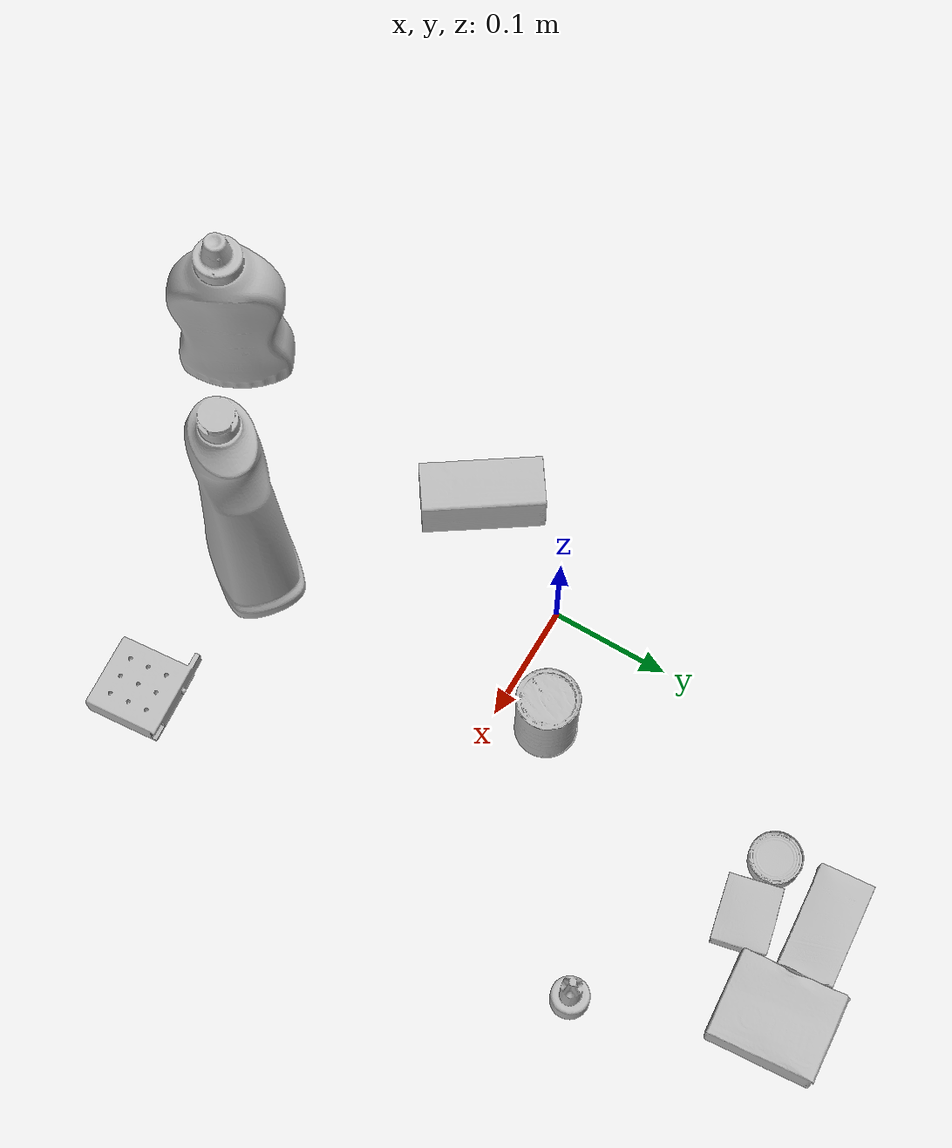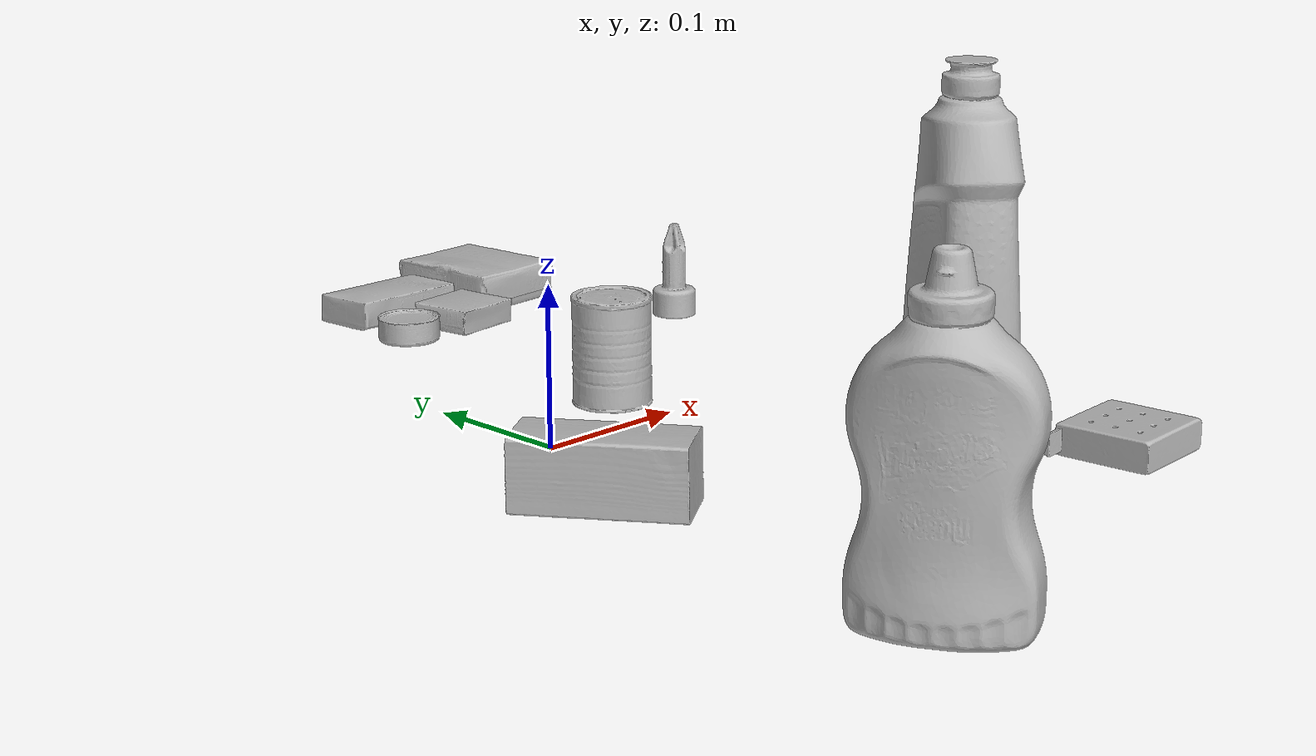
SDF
<sdf version="1.4">
  <world name="default">
    <light name="light1" type="point">
      <pose>0 0 1 0 0 0</pose>
      <diffuse>3 3 3 1</diffuse>
      <specular>3 3 3 1</specular>
    </light>
    <light name="light2" type="point">
      <pose>0 0.5 2 0 0 0</pose>
      <diffuse>1 1 1 1</diffuse>
      <specular>1 1 1 1</specular>
    </light>
    <light name="light3" type="point">
      <pose>0 0.5 2 0 0 0</pose>
      <diffuse>3 3 3 1</diffuse>
      <specular>3 3 3 1</specular>
    </light>
    <scene>
      <ambient>0.7 0.7 0.7</ambient>
    </scene>
    <model name="bottle1">
      <link name="link_bottle1">
        <collision name="default">
          <geometry>
            <mesh>
              <uri>model://mustard_bottle/collision_meshes/collision.obj</uri>
              <scale>1.0 1.0 1.0</scale>
            </mesh>
          </geometry>
          <surface>
            <friction>
              <ode>
                <mu>0.5</mu>
                <mu2>0.5</mu2>
              </ode>
            </friction>
          <contact>
        <ode>
            <max_vel>0</max_vel>
            <min_depth>0.0001</min_depth>
            <kp>1e8</kp>
        </ode>
    </contact></surface>
        </collision>
        <visual name="default">
          <geometry>
            <mesh>
              <uri>model://mustard_bottle/visual_meshes/visual.dae</uri>
              <scale>1.0 1.0 1.0</scale>
            </mesh>
          </geometry>
        </visual>
        <inertial>
          <mass>0.9814921021461487</mass>
          <pose>0.000503245391882956 -0.00015647400869056582 -0.0174757968634367 0.00041823298570721707 0.000946579165099878 0.024853733541460008</pose>
          <inertia>
            <ixx>0.0027254699</ixx>
            <iyy>0.0023913688</iyy>
            <izz>0.0007182988</izz>
            <ixy>0</ixy>
            <ixz>0</ixz>
            <iyz>0</iyz>
          </inertia>
        </inertial>
      </link>
      <pose>-0.06332647800445557 -0.3509881794452667 0.09615199267864227 1.5462778718309598e-05 1.6913002993196727e-05 -2.6707772739385565</pose>
    </model>
    <model name="bottle2">
      <link name="link_bottle2">
        <collision name="default">
          <geometry>
            <mesh>
              <uri>model://bleach_cleanser/collision_meshes/collision.obj</uri>
              <scale>1.0 1.0 1.0</scale>
            </mesh>
          </geometry>
          <surface>
            <friction>
              <ode>
                <mu>0.5</mu>
                <mu2>0.5</mu2>
              </ode>
            </friction>
          <contact>
        <ode>
            <max_vel>0</max_vel>
            <min_depth>0.0001</min_depth>
            <kp>1e8</kp>
        </ode>
    </contact></surface>
        </collision>
        <visual name="default">
          <geometry>
            <mesh>
              <uri>model://bleach_cleanser/visual_meshes/visual.dae</uri>
              <scale>1.0 1.0 1.0</scale>
            </mesh>
          </geometry>
        </visual>
        <inertial>
          <mass>0.5613878965377808</mass>
          <pose>0.00012193182919872925 0.0037838828284293413 -0.02442161738872528 -0.07381670616369514 0.00042011545192634117 -0.006875071107578698</pose>
          <inertia>
            <ixx>0.0027323565</ixx>
            <iyy>0.002546156</iyy>
            <izz>0.0004671619</izz>
            <ixy>0</ixy>
            <ixz>0</ixz>
            <iyz>0</iyz>
          </inertia>
        </inertial>
      </link>
      <pose>0.08750555664300919 -0.23795662820339203 0.12578417360782623 -0.00020466785381448234 1.1496330504502928e-05 2.4917598590366334</pose>
    </model>
    <model name="toy1">
      <link name="link_toy1">
        <collision name="default">
          <geometry>
            <mesh>
              <uri>model://nine_hole_peg_test/collision_meshes/collision.obj</uri>
              <scale>0.5 0.5 0.5</scale>
            </mesh>
          </geometry>
          <surface>
            <friction>
              <ode>
                <mu>0.5</mu>
                <mu2>0.5</mu2>
              </ode>
            </friction>
          <contact>
        <ode>
            <max_vel>0</max_vel>
            <min_depth>0.0001</min_depth>
            <kp>1e8</kp>
        </ode>
    </contact></surface>
        </collision>
        <visual name="default">
          <geometry>
            <mesh>
              <uri>model://nine_hole_peg_test/visual_meshes/visual.dae</uri>
              <scale>0.5 0.5 0.5</scale>
            </mesh>
          </geometry>
        </visual>
        <inertial>
          <mass>0.10001979023218155</mass>
          <pose>-0.002308693015947938 -0.0048238071613013744 1.323034393863054e-05 -0.001466679064329537 0.000719417562538249 -0.6342417933325166</pose>
          <inertia>
            <ixx>3.9099352e-05</ixx>
            <iyy>3.650665e-05</iyy>
            <izz>6.851359e-05</izz>
            <ixy>0</ixy>
            <ixz>0</ixz>
            <iyz>0</iyz>
          </inertia>
        </inertial>
      </link>
      <pose>0.22482654452323914 -0.2516252100467682 0.010385501198470592 -1.3153306728906787e-09 -1.7533610539138154e-09 1.661186961516463</pose>
    </model>
    <model name="toy2">
      <link name="link_toy2">
        <collision name="default">
          <geometry>
            <mesh>
              <uri>model://d_toy_airplane/collision_meshes/collision.obj</uri>
              <scale>1.0 1.0 1.0</scale>
            </mesh>
          </geometry>
          <surface>
            <friction>
              <ode>
                <mu>0.5</mu>
                <mu2>0.5</mu2>
              </ode>
            </friction>
          <contact>
        <ode>
            <max_vel>0</max_vel>
            <min_depth>0.0001</min_depth>
            <kp>1e8</kp>
        </ode>
    </contact></surface>
        </collision>
        <visual name="default">
          <geometry>
            <mesh>
              <uri>model://d_toy_airplane/visual_meshes/visual.dae</uri>
              <scale>1.0 1.0 1.0</scale>
            </mesh>
          </geometry>
        </visual>
        <inertial>
          <mass>0.019254321232438087</mass>
          <pose>9.410314669366926e-05 -5.809308640891686e-05 -0.011728096753358841 0.0002669110283705203 0.00467899073598619 0.5194519611142697</pose>
          <inertia>
            <ixx>5.7720713e-06</ixx>
            <iyy>5.776424e-06</iyy>
            <izz>1.7426261e-06</izz>
            <ixy>0</ixy>
            <ixz>0</ixz>
            <iyz>0</iyz>
          </inertia>
        </inertial>
      </link>
      <pose>0.2699548006057739 0.16620829701423645 0.033338889479637146 4.660718563972221e-05 -7.690075601233921e-05 0.4319920384248468</pose>
    </model>
    <model name="can1">
      <link name="link_can1">
        <collision name="default">
          <geometry>
            <mesh>
              <uri>model://master_chef_can/collision_meshes/collision.obj</uri>
              <scale>0.5 0.5 0.5</scale>
            </mesh>
          </geometry>
          <surface>
            <friction>
              <ode>
                <mu>0.5</mu>
                <mu2>0.5</mu2>
              </ode>
            </friction>
          <contact>
        <ode>
            <max_vel>0</max_vel>
            <min_depth>0.0001</min_depth>
            <kp>1e8</kp>
        </ode>
    </contact></surface>
        </collision>
        <visual name="default">
          <geometry>
            <mesh>
              <uri>model://master_chef_can/visual_meshes/visual.dae</uri>
              <scale>0.5 0.5 0.5</scale>
            </mesh>
          </geometry>
        </visual>
        <inertial>
          <mass>0.11909646540880203</mass>
          <pose>-4.661963976104744e-05 1.3926845099376806e-07 -5.07990553160198e-05 -0.0017995128948922 0.0006479239957886283 -0.6102624789319168</pose>
          <inertia>
            <ixx>6.990155e-05</ixx>
            <iyy>6.938709e-05</iyy>
            <izz>3.8625953e-05</izz>
            <ixy>0</ixy>
            <ixz>0</ixz>
            <iyz>0</iyz>
          </inertia>
        </inertial>
      </link>
      <pose>0.0896235778927803 0.04104979336261749 0.03530200198292732 -1.1788329561505992e-06 -9.449913910905881e-07 -1.5200417273816456</pose>
    </model>
    <model name="can2">
      <link name="link_can2">
        <collision name="default">
          <geometry>
            <mesh>
              <uri>model://tuna_fish_can/collision_meshes/collision.obj</uri>
              <scale>0.5 0.5 0.5</scale>
            </mesh>
          </geometry>
          <surface>
            <friction>
              <ode>
                <mu>0.5</mu>
                <mu2>0.5</mu2>
              </ode>
            </friction>
          <contact>
        <ode>
            <max_vel>0</max_vel>
            <min_depth>0.0001</min_depth>
            <kp>1e8</kp>
        </ode>
    </contact></surface>
        </collision>
        <visual name="default">
          <geometry>
            <mesh>
              <uri>model://tuna_fish_can/visual_meshes/visual.dae</uri>
              <scale>0.5 0.5 0.5</scale>
            </mesh>
          </geometry>
        </visual>
        <inertial>
          <mass>0.019333453848958015</mass>
          <pose>-2.0361452698125504e-05 -7.256490789586678e-06 -0.0005269024986773729 -0.0017944786606280685 0.0001716327651594619 0.24054823336333434</pose>
          <inertia>
            <ixx>2.6139116e-06</ixx>
            <iyy>2.6030175e-06</iyy>
            <izz>4.4727767e-06</izz>
            <ixy>0</ixy>
            <ixz>0</ixz>
            <iyz>0</iyz>
          </inertia>
        </inertial>
      </link>
      <pose>0.09481833875179291 0.25013771653175354 0.008519998751580715 4.5609847312018293e-10 1.1799104633162937e-08 1.83088733914567</pose>
    </model>
    <model name="box1">
      <link name="link_box1">
        <collision name="default">
          <geometry>
            <mesh>
              <uri>model://sugar_box/collision_meshes/collision.obj</uri>
              <scale>0.5 0.5 0.5</scale>
            </mesh>
          </geometry>
          <surface>
            <friction>
              <ode>
                <mu>0.5</mu>
                <mu2>0.5</mu2>
              </ode>
            </friction>
          <contact>
        <ode>
            <max_vel>0</max_vel>
            <min_depth>0.0001</min_depth>
            <kp>1e8</kp>
        </ode>
    </contact></surface>
        </collision>
        <visual name="default">
          <geometry>
            <mesh>
              <uri>model://sugar_box/visual_meshes/visual.dae</uri>
              <scale>0.5 0.5 0.5</scale>
            </mesh>
          </geometry>
        </visual>
        <inertial>
          <mass>0.11277332901954651</mass>
          <pose>0.0005171863595023751 1.924554817378521e-05 -0.0001818240125430748 -0.00040462603870476286 0.0010506635217257978 0.002615378323397263</pose>
          <inertia>
            <ixx>2.34906e-05</ixx>
            <iyy>7.592646e-05</iyy>
            <izz>9.089305e-05</izz>
            <ixy>0</ixy>
            <ixz>0</ixz>
            <iyz>0</iyz>
          </inertia>
        </inertial>
      </link>
      <pose>0.1233922615647316 0.3081555664539337 0.011399304494261742 0.0007742176903913197 -0.02343339294349664 -3.0602881431543305</pose>
    </model>
    <model name="box2">
      <link name="link_box2">
        <collision name="default">
          <geometry>
            <mesh>
              <uri>model://gelatin_box/collision_meshes/collision.obj</uri>
              <scale>1.0 1.0 1.0</scale>
            </mesh>
          </geometry>
          <surface>
            <friction>
              <ode>
                <mu>0.5</mu>
                <mu2>0.5</mu2>
              </ode>
            </friction>
          <contact>
        <ode>
            <max_vel>0</max_vel>
            <min_depth>0.0001</min_depth>
            <kp>1e8</kp>
        </ode>
    </contact></surface>
        </collision>
        <visual name="default">
          <geometry>
            <mesh>
              <uri>model://gelatin_box/visual_meshes/visual.dae</uri>
              <scale>1.0 1.0 1.0</scale>
            </mesh>
          </geometry>
        </visual>
        <inertial>
          <mass>0.18825438618659973</mass>
          <pose>0.0004319618456065655 0.00011156871914863586 -0.0003640321083366871 -0.0010503720853528096 -0.004755817758068365 0.016440559471334753</pose>
          <inertia>
            <ixx>0.00013289225</ixx>
            <iyy>9.492423e-05</iyy>
            <izz>0.0002022916</izz>
            <ixy>0</ixy>
            <ixz>0</ixz>
            <iyz>0</iyz>
          </inertia>
        </inertial>
      </link>
      <pose>0.20476095378398895 0.308126837015152 0.01516831573098898 0.005597032592603572 -0.0073040306530798346 -3.0663459355223206</pose>
    </model>
    <model name="box3">
      <link name="link_box3">
        <collision name="default">
          <geometry>
            <mesh>
              <uri>model://wood_block/collision_meshes/collision.obj</uri>
              <scale>0.5 0.5 0.5</scale>
            </mesh>
          </geometry>
          <surface>
            <friction>
              <ode>
                <mu>0.5</mu>
                <mu2>0.5</mu2>
              </ode>
            </friction>
          <contact>
        <ode>
            <max_vel>0</max_vel>
            <min_depth>0.0001</min_depth>
            <kp>1e8</kp>
        </ode>
    </contact></surface>
        </collision>
        <visual name="default">
          <geometry>
            <mesh>
              <uri>model://wood_block/visual_meshes/visual.dae</uri>
              <scale>0.5 0.5 0.5</scale>
            </mesh>
          </geometry>
        </visual>
        <inertial>
          <mass>0.16905224323272705</mass>
          <pose>-2.906657982748584e-06 -0.00028540476341731846 0.00013204291462898254 -0.05220975529285028 -0.0051926941753174345 -0.0068613788950967446</pose>
          <inertia>
            <ixx>5.655437e-05</ixx>
            <iyy>0.00017865526</iyy>
            <izz>0.00017798702</izz>
            <ixy>0</ixy>
            <ixz>0</ixz>
            <iyz>0</iyz>
          </inertia>
        </inertial>
      </link>
      <pose>-0.052794426679611206 -0.10241011530160904 0.022629261016845703 -0.005208369370913656 0.005718761341740057 2.1729236175245776</pose>
    </model>
    <model name="box4">
      <link name="link_box4">
        <collision name="default">
          <geometry>
            <mesh>
              <uri>model://pudding_box/collision_meshes/collision.obj</uri>
              <scale>0.5 0.5 0.5</scale>
            </mesh>
          </geometry>
          <surface>
            <friction>
              <ode>
                <mu>0.5</mu>
                <mu2>0.5</mu2>
              </ode>
            </friction>
          <contact>
        <ode>
            <max_vel>0</max_vel>
            <min_depth>0.0001</min_depth>
            <kp>1e8</kp>
        </ode>
    </contact></surface>
        </collision>
        <visual name="default">
          <geometry>
            <mesh>
              <uri>model://pudding_box/visual_meshes/visual.dae</uri>
              <scale>0.5 0.5 0.5</scale>
            </mesh>
          </geometry>
        </visual>
        <inertial>
          <mass>0.04372405260801315</mass>
          <pose>0.00024474109522998333 0.00040339428232982755 -0.00025944135268218815 0.005213099923843092 -0.006603798704775496 0.02007982702870814</pose>
          <inertia>
            <ixx>1.2356946e-05</ixx>
            <iyy>8.313842e-06</iyy>
            <izz>1.8248264e-05</izz>
            <ixy>0</ixy>
            <ixz>0</ixz>
            <iyz>0</iyz>
          </inertia>
        </inertial>
      </link>
      <pose>0.1456153690814972 0.2519212067127228 0.009862899780273438 0.02234969354259269 -0.01139088252571255 1.7895894189583632</pose>
    </model>
  <physics type="ode">
      <max_contacts>50</max_contacts>
      <ode>
        <solver>
          <type>quick</type>
          <iters>75</iters>
        </solver>
        <constraints>
          <contact_max_correcting_vel>0</contact_max_correcting_vel>
          <contact_surface_layer>0</contact_surface_layer>
        </constraints>
      </ode>
    </physics></world>
</sdf>
